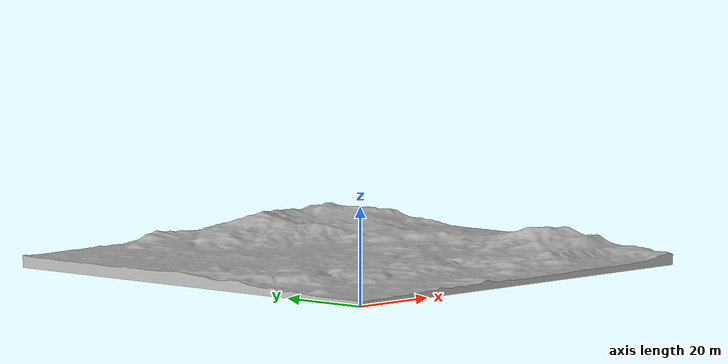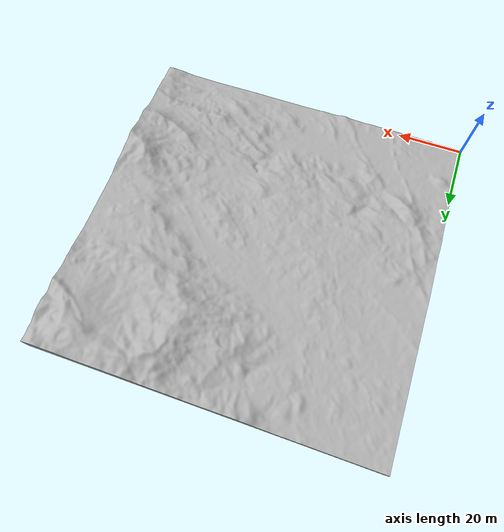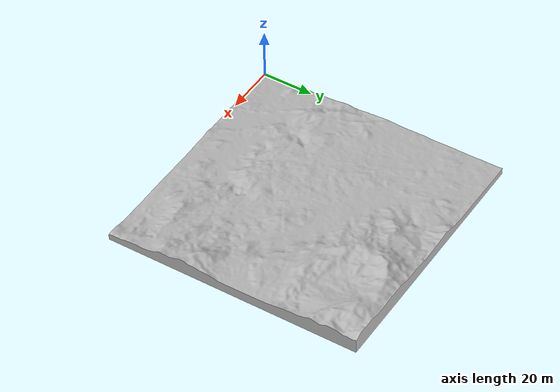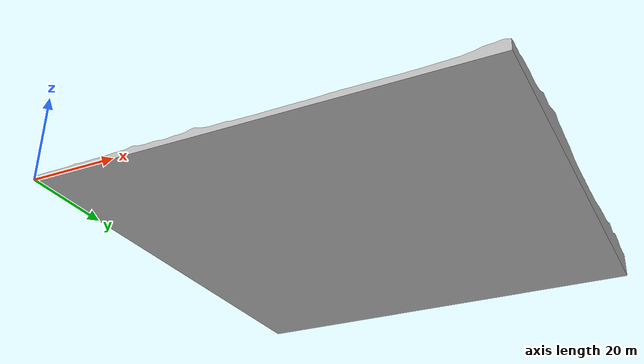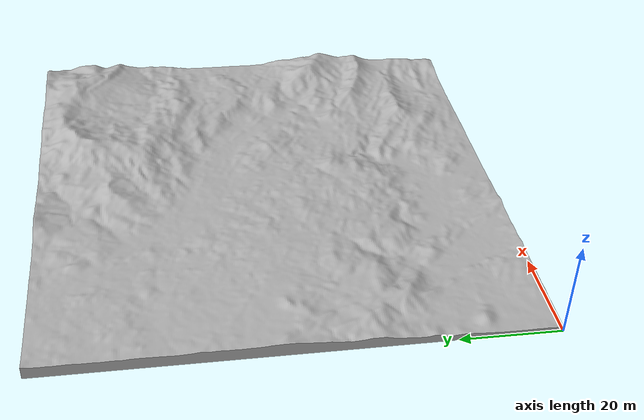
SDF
<?xml version="1.0" ?>
<sdf version="1.8">
  <model name="custom_terrain">
    <static>true</static>
    <link name="link">
      <!-- Visual geometry -->
      <visual name="visual">
        <geometry>
          <mesh>
            <uri>model://custom_terrain/meshes/custom_terrain.STL</uri>
          </mesh>
        </geometry>
      </visual>

      <!-- Collision geometry -->
      <collision name="collision">
        <geometry>
          <mesh>
            <uri>model://custom_terrain/meshes/custom_terrain.STL</uri>
          </mesh>
        </geometry>
      </collision>
    </link>
  </model>
</sdf>
